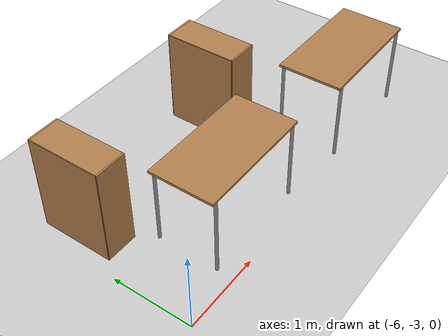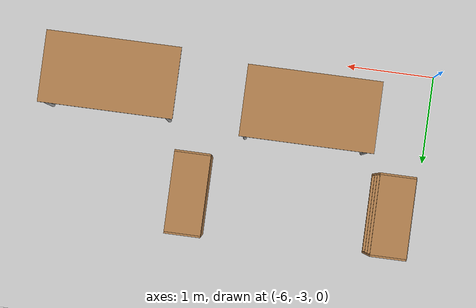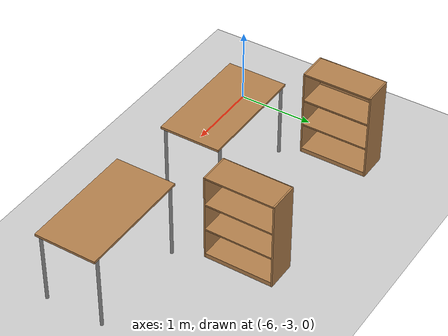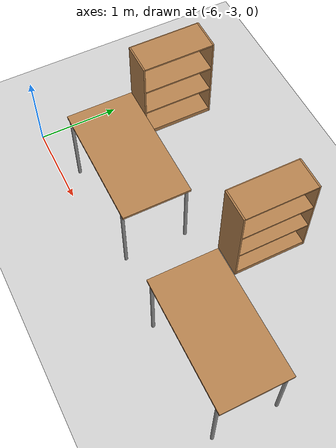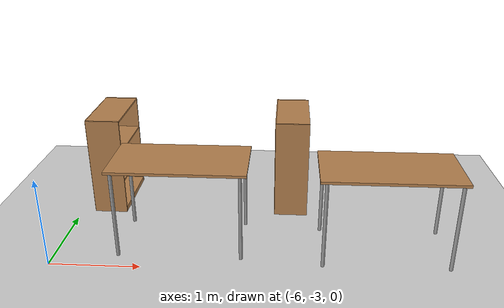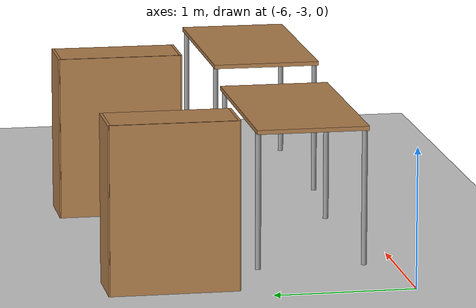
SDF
<sdf version="1.5">
 <world name="default">
  <model name="ground_plane">
   <static>1</static>
   <link name="link">
    <collision name="collision">
     <geometry><plane><normal>0 0 1</normal><size>100 100</size></plane></geometry>
     <surface><friction><ode><mu>100</mu><mu2>50</mu2></ode></friction></surface>
    </collision>
    <visual name="visual">
     <cast_shadows>0</cast_shadows>
     <geometry><plane><normal>0 0 1</normal><size>100 100</size></plane></geometry>
     <material>
      <script><uri>file://media/materials/scripts/gazebo.material</uri><name>Gazebo/Grey</name></script>
     </material>
    </visual>
   </link>
  </model>
  <model name="bookshelf_3_clone_clone_clone_0">
   <static>1</static>
   <link name="link">
    <inertial><mass>1</mass></inertial>
    <collision name="back">
     <pose>0 0.005 0.6 0 -0 0</pose>
     <geometry><box><size>0.9 0.01 1.2</size></box></geometry>
    </collision>
    <visual name="visual1">
     <pose>0 0.005 0.6 0 -0 0</pose>
     <geometry><box><size>0.9 0.01 1.2</size></box></geometry>
     <material>
      <script><uri>file://media/materials/scripts/gazebo.material</uri><name>Gazebo/Wood</name></script>
     </material>
    </visual>
    <collision name="left_side">
     <pose>0.45 -0.195 0.6 0 -0 0</pose>
     <geometry><box><size>0.02 0.4 1.2</size></box></geometry>
    </collision>
    <visual name="visual2">
     <pose>0.45 -0.195 0.6 0 -0 0</pose>
     <geometry><box><size>0.02 0.4 1.2</size></box></geometry>
     <material>
      <script><uri>file://media/materials/scripts/gazebo.material</uri><name>Gazebo/Wood</name></script>
     </material>
    </visual>
    <collision name="right_side">
     <pose>-0.45 -0.195 0.6 0 -0 0</pose>
     <geometry><box><size>0.02 0.4 1.2</size></box></geometry>
    </collision>
    <visual name="visual3">
     <pose>-0.45 -0.195 0.6 0 -0 0</pose>
     <geometry><box><size>0.02 0.4 1.2</size></box></geometry>
     <material>
      <script><uri>file://media/materials/scripts/gazebo.material</uri><name>Gazebo/Wood</name></script>
     </material>
    </visual>
    <collision name="bottom">
     <pose>0 -0.195 0.03 0 -0 0</pose>
     <geometry><box><size>0.88 0.4 0.06</size></box></geometry>
    </collision>
    <visual name="visual4">
     <pose>0 -0.195 0.03 0 -0 0</pose>
     <geometry><box><size>0.88 0.4 0.06</size></box></geometry>
     <material>
      <script><uri>file://media/materials/scripts/gazebo.material</uri><name>Gazebo/Wood</name></script>
     </material>
    </visual>
    <collision name="top">
     <pose>0 -0.195 1.19 0 -0 0</pose>
     <geometry><box><size>0.88 0.4 0.02</size></box></geometry>
    </collision>
    <visual name="visual5">
     <pose>0 -0.195 1.19 0 -0 0</pose>
     <geometry><box><size>0.88 0.4 0.02</size></box></geometry>
     <material>
      <script><uri>file://media/materials/scripts/gazebo.material</uri><name>Gazebo/Wood</name></script>
     </material>
    </visual>
    <collision name="low_shelf">
     <pose>0 -0.195 0.43 0 -0 0</pose>
     <geometry><box><size>0.88 0.4 0.02</size></box></geometry>
    </collision>
    <visual name="visual6">
     <pose>0 -0.195 0.43 0 -0 0</pose>
     <geometry><box><size>0.88 0.4 0.02</size></box></geometry>
     <material>
      <script><uri>file://media/materials/scripts/gazebo.material</uri><name>Gazebo/Wood</name></script>
     </material>
    </visual>
    <collision name="high_shelf">
     <pose>0 -0.195 0.8 0 -0 0</pose>
     <geometry><box><size>0.88 0.4 0.02</size></box></geometry>
    </collision>
    <visual name="visual7">
     <pose>0 -0.195 0.8 0 -0 0</pose>
     <geometry><box><size>0.88 0.4 0.02</size></box></geometry>
     <material>
      <script><uri>file://media/materials/scripts/gazebo.material</uri><name>Gazebo/Wood</name></script>
     </material>
    </visual>
   </link>
   <pose>-5.83615 -1.34282 0 0 -0 1.57</pose>
  </model>
  <model name="table_0">
   <static>1</static>
   <link name="link">
    <collision name="surface">
     <pose>0 0 1 0 -0 0</pose>
     <geometry><box><size>1.5 0.8 0.03</size></box></geometry>
     <surface><friction><ode><mu>0.6</mu><mu2>0.6</mu2></ode></friction></surface>
    </collision>
    <visual name="visual1">
     <pose>0 0 1 0 -0 0</pose>
     <geometry><box><size>1.5 0.8 0.03</size></box></geometry>
     <material>
      <script><uri>file://media/materials/scripts/gazebo.material</uri><name>Gazebo/Wood</name></script>
     </material>
    </visual>
    <collision name="front_left_leg">
     <pose>0.68 0.38 0.5 0 -0 0</pose>
     <geometry><cylinder><radius>0.02</radius><length>1</length></cylinder></geometry>
    </collision>
    <visual name="front_left_leg">
     <pose>0.68 0.38 0.5 0 -0 0</pose>
     <geometry><cylinder><radius>0.02</radius><length>1</length></cylinder></geometry>
     <material>
      <script><uri>file://media/materials/scripts/gazebo.material</uri><name>Gazebo/Grey</name></script>
     </material>
    </visual>
    <collision name="front_right_leg">
     <pose>0.68 -0.38 0.5 0 -0 0</pose>
     <geometry><cylinder><radius>0.02</radius><length>1</length></cylinder></geometry>
    </collision>
    <visual name="front_right_leg">
     <pose>0.68 -0.38 0.5 0 -0 0</pose>
     <geometry><cylinder><radius>0.02</radius><length>1</length></cylinder></geometry>
     <material>
      <script><uri>file://media/materials/scripts/gazebo.material</uri><name>Gazebo/Grey</name></script>
     </material>
    </visual>
    <collision name="back_right_leg">
     <pose>-0.68 -0.38 0.5 0 -0 0</pose>
     <geometry><cylinder><radius>0.02</radius><length>1</length></cylinder></geometry>
    </collision>
    <visual name="back_right_leg">
     <pose>-0.68 -0.38 0.5 0 -0 0</pose>
     <geometry><cylinder><radius>0.02</radius><length>1</length></cylinder></geometry>
     <material>
      <script><uri>file://media/materials/scripts/gazebo.material</uri><name>Gazebo/Grey</name></script>
     </material>
    </visual>
    <collision name="back_left_leg">
     <pose>-0.68 0.38 0.5 0 -0 0</pose>
     <geometry><cylinder><radius>0.02</radius><length>1</length></cylinder></geometry>
    </collision>
    <visual name="back_left_leg">
     <pose>-0.68 0.38 0.5 0 -0 0</pose>
     <geometry><cylinder><radius>0.02</radius><length>1</length></cylinder></geometry>
     <material>
      <script><uri>file://media/materials/scripts/gazebo.material</uri><name>Gazebo/Grey</name></script>
     </material>
    </visual>
   </link>
   <pose>-4.6102 -2.40135 0 0 -0 0</pose>
  </model>
  <model name="table_0_clone">
   <static>1</static>
   <link name="link">
    <collision name="surface">
     <pose>0 0 1 0 -0 0</pose>
     <geometry><box><size>1.5 0.8 0.03</size></box></geometry>
     <surface><friction><ode><mu>0.6</mu><mu2>0.6</mu2></ode></friction></surface>
    </collision>
    <visual name="visual1">
     <pose>0 0 1 0 -0 0</pose>
     <geometry><box><size>1.5 0.8 0.03</size></box></geometry>
     <material>
      <script><uri>file://media/materials/scripts/gazebo.material</uri><name>Gazebo/Wood</name></script>
     </material>
    </visual>
    <collision name="front_left_leg">
     <pose>0.68 0.38 0.5 0 -0 0</pose>
     <geometry><cylinder><radius>0.02</radius><length>1</length></cylinder></geometry>
    </collision>
    <visual name="front_left_leg">
     <pose>0.68 0.38 0.5 0 -0 0</pose>
     <geometry><cylinder><radius>0.02</radius><length>1</length></cylinder></geometry>
     <material>
      <script><uri>file://media/materials/scripts/gazebo.material</uri><name>Gazebo/Grey</name></script>
     </material>
    </visual>
    <collision name="front_right_leg">
     <pose>0.68 -0.38 0.5 0 -0 0</pose>
     <geometry><cylinder><radius>0.02</radius><length>1</length></cylinder></geometry>
    </collision>
    <visual name="front_right_leg">
     <pose>0.68 -0.38 0.5 0 -0 0</pose>
     <geometry><cylinder><radius>0.02</radius><length>1</length></cylinder></geometry>
     <material>
      <script><uri>file://media/materials/scripts/gazebo.material</uri><name>Gazebo/Grey</name></script>
     </material>
    </visual>
    <collision name="back_right_leg">
     <pose>-0.68 -0.38 0.5 0 -0 0</pose>
     <geometry><cylinder><radius>0.02</radius><length>1</length></cylinder></geometry>
    </collision>
    <visual name="back_right_leg">
     <pose>-0.68 -0.38 0.5 0 -0 0</pose>
     <geometry><cylinder><radius>0.02</radius><length>1</length></cylinder></geometry>
     <material>
      <script><uri>file://media/materials/scripts/gazebo.material</uri><name>Gazebo/Grey</name></script>
     </material>
    </visual>
    <collision name="back_left_leg">
     <pose>-0.68 0.38 0.5 0 -0 0</pose>
     <geometry><cylinder><radius>0.02</radius><length>1</length></cylinder></geometry>
    </collision>
    <visual name="back_left_leg">
     <pose>-0.68 0.38 0.5 0 -0 0</pose>
     <geometry><cylinder><radius>0.02</radius><length>1</length></cylinder></geometry>
     <material>
      <script><uri>file://media/materials/scripts/gazebo.material</uri><name>Gazebo/Grey</name></script>
     </material>
    </visual>
   </link>
   <pose>-2.36232 -2.48714 0 0 -0 0</pose>
  </model>
  <model name="bookshelf_3_clone_clone_clone_0_clone">
   <static>1</static>
   <link name="link">
    <inertial><mass>1</mass></inertial>
    <collision name="back">
     <pose>0 0.005 0.6 0 -0 0</pose>
     <geometry><box><size>0.9 0.01 1.2</size></box></geometry>
    </collision>
    <visual name="visual1">
     <pose>0 0.005 0.6 0 -0 0</pose>
     <geometry><box><size>0.9 0.01 1.2</size></box></geometry>
     <material>
      <script><uri>file://media/materials/scripts/gazebo.material</uri><name>Gazebo/Wood</name></script>
     </material>
    </visual>
    <collision name="left_side">
     <pose>0.45 -0.195 0.6 0 -0 0</pose>
     <geometry><box><size>0.02 0.4 1.2</size></box></geometry>
    </collision>
    <visual name="visual2">
     <pose>0.45 -0.195 0.6 0 -0 0</pose>
     <geometry><box><size>0.02 0.4 1.2</size></box></geometry>
     <material>
      <script><uri>file://media/materials/scripts/gazebo.material</uri><name>Gazebo/Wood</name></script>
     </material>
    </visual>
    <collision name="right_side">
     <pose>-0.45 -0.195 0.6 0 -0 0</pose>
     <geometry><box><size>0.02 0.4 1.2</size></box></geometry>
    </collision>
    <visual name="visual3">
     <pose>-0.45 -0.195 0.6 0 -0 0</pose>
     <geometry><box><size>0.02 0.4 1.2</size></box></geometry>
     <material>
      <script><uri>file://media/materials/scripts/gazebo.material</uri><name>Gazebo/Wood</name></script>
     </material>
    </visual>
    <collision name="bottom">
     <pose>0 -0.195 0.03 0 -0 0</pose>
     <geometry><box><size>0.88 0.4 0.06</size></box></geometry>
    </collision>
    <visual name="visual4">
     <pose>0 -0.195 0.03 0 -0 0</pose>
     <geometry><box><size>0.88 0.4 0.06</size></box></geometry>
     <material>
      <script><uri>file://media/materials/scripts/gazebo.material</uri><name>Gazebo/Wood</name></script>
     </material>
    </visual>
    <collision name="top">
     <pose>0 -0.195 1.19 0 -0 0</pose>
     <geometry><box><size>0.88 0.4 0.02</size></box></geometry>
    </collision>
    <visual name="visual5">
     <pose>0 -0.195 1.19 0 -0 0</pose>
     <geometry><box><size>0.88 0.4 0.02</size></box></geometry>
     <material>
      <script><uri>file://media/materials/scripts/gazebo.material</uri><name>Gazebo/Wood</name></script>
     </material>
    </visual>
    <collision name="low_shelf">
     <pose>0 -0.195 0.43 0 -0 0</pose>
     <geometry><box><size>0.88 0.4 0.02</size></box></geometry>
    </collision>
    <visual name="visual6">
     <pose>0 -0.195 0.43 0 -0 0</pose>
     <geometry><box><size>0.88 0.4 0.02</size></box></geometry>
     <material>
      <script><uri>file://media/materials/scripts/gazebo.material</uri><name>Gazebo/Wood</name></script>
     </material>
    </visual>
    <collision name="high_shelf">
     <pose>0 -0.195 0.8 0 -0 0</pose>
     <geometry><box><size>0.88 0.4 0.02</size></box></geometry>
    </collision>
    <visual name="visual7">
     <pose>0 -0.195 0.8 0 -0 0</pose>
     <geometry><box><size>0.88 0.4 0.02</size></box></geometry>
     <material>
      <script><uri>file://media/materials/scripts/gazebo.material</uri><name>Gazebo/Wood</name></script>
     </material>
    </visual>
   </link>
   <pose>-3.58472 -1.30048 0 0 -0 1.57</pose>
  </model>
 </world>
</sdf>
